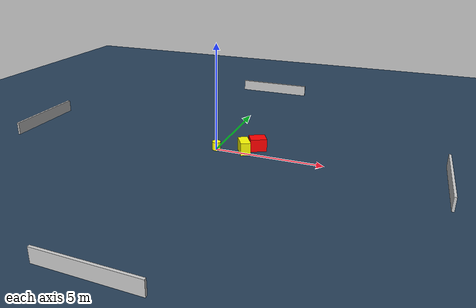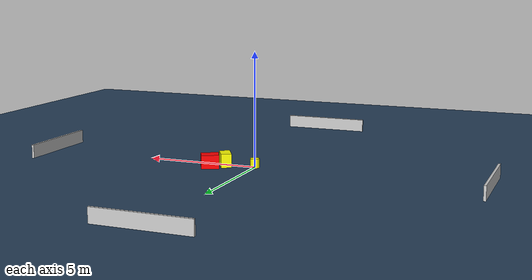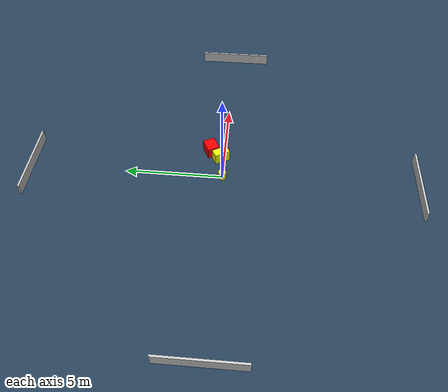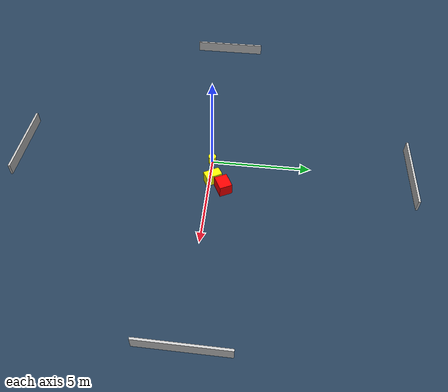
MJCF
<?xml version="1.0" ?>
<mujoco model="generated_environment">
  <option timestep="0.01" integrator="RK4" cone="elliptic"/>
  <default>
    <geom density="1"/>
  </default>
  <asset>
    <texture builtin="gradient" height="3072" name="skybox" rgb1="0.3 0.5 0.7" rgb2="0 0 0" type="skybox" width="512"/>
    <texture builtin="checker" height="300" name="groundplane" rgb1="0.2 0.3 0.4" rgb2="0.1 0.2 0.3" type="2d" width="300"/>
    <material name="groundplane" reflectance="0.2" texrepeat="5 5" texture="groundplane"/>
  </asset>
  <worldbody>
    <light dir="0 0 -1" directional="true" pos="0 0 1.5"/>
    <geom condim="3" friction="0.5 0.005 0.001" material="groundplane" name="floor" pos="0 0 0" size="0 0 0.05" type="plane"/>
    <body name="walls">
      <geom name="wall_1" condim="4" pos="-10.0 0.0 0.3" rgba="0.800000011920929 0.800000011920929 0.800000011920929 1.0" size="0.05 2.0 0.3" type="box"/>
      <geom name="wall_2" condim="4" pos="10.0 0.0 0.3" rgba="0.800000011920929 0.800000011920929 0.800000011920929 1.0" size="0.05 2.0 0.3" type="box"/>
      <geom name="wall_3" condim="4" pos="0.0 -10.0 0.3" rgba="0.800000011920929 0.800000011920929 0.800000011920929 1.0" size="2.0 0.05 0.3" type="box"/>
      <geom name="wall_4" condim="4" pos="0.0 10.0 0.3" rgba="0.800000011920929 0.800000011920929 0.800000011920929 1.0" size="2.0 0.05 0.3" type="box"/>
    </body>
    <body name="robot">
      <joint name="joint_x" type="slide" pos="0 0 0" axis="1 0 0"/>
      <joint name="joint_y" type="slide" pos="0 0 0" axis="0 1 0"/>
      <geom name="robot" type="cylinder" pos="0.0 0.0 0.2" size="0.2 0.2 0.0" mass="5.0" friction="1.0 0.005 0.0001" condim="4" rgba="1.0 1.0 0.0 1.0"/>
    </body>
    <body name="obstacle_1_movable">
      <geom name="obstacle_1_movable" condim="4" pos="1.3042060804648514 0.17530687451281116 0.3" euler="0 0 119.59147154616993" friction="0.0 0.005 0.001" rgba="1.0 1.0 0.0 1.0" size="0.4089375819659941 0.2310007240505031 0.3" type="box" mass="0.1"/>
      <joint type="free"/>
    </body>
    <body name="obstacle_2_static">
      <geom name="obstacle_2_static" condim="4" pos="1.784427589096287 0.7388131923226677 0.3" euler="0 0 117.20103856803779" friction="0.0 0.005 0.001" rgba="1.0 0.0 0.0 1.0" size="0.31656268067604076 0.3820268509793058 0.3" type="box"/>
    </body>
  </worldbody>
  <actuator>
    <motor name="actuator_x" joint="joint_x" gear="1" ctrlrange="-1 1"/>
    <motor name="actuator_y" joint="joint_y" gear="1" ctrlrange="-1 1"/>
  </actuator>
</mujoco>
